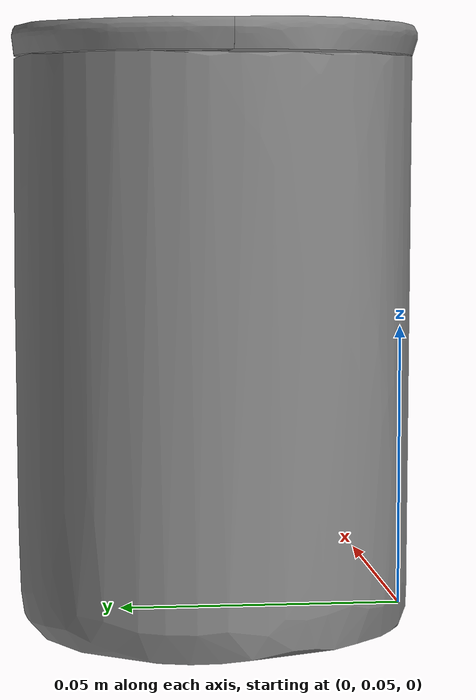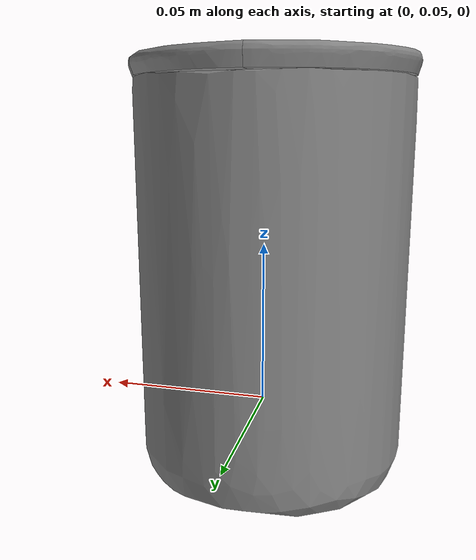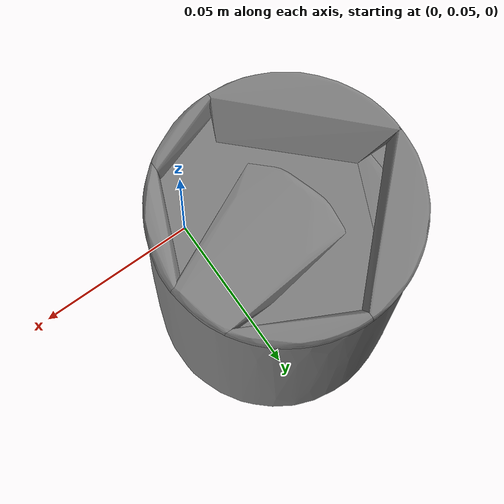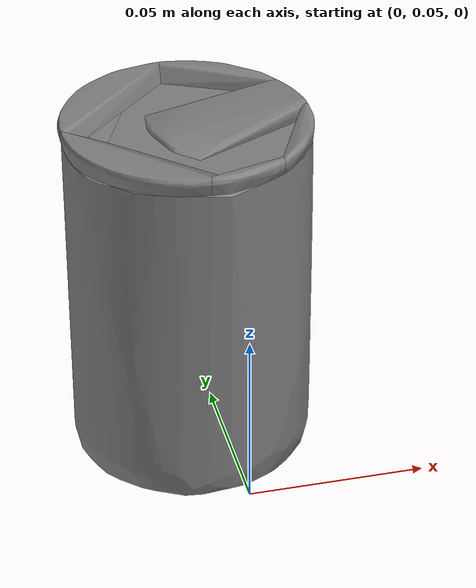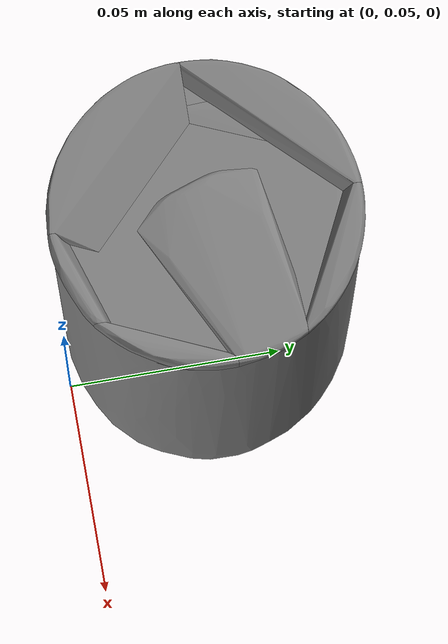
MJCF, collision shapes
<mujoco model="ycb_005_tomato_soup_can">
  <compiler meshdir="meshes" texturedir="meshes" angle="radian"/>
  <default>
    <default class="visual"><geom contype="0" conaffinity="0" group="2" density="0"/></default>
    <default class="collision"><geom group="3"/></default>
  </default>
  <asset>
    <texture name="ycb_005_tomato_soup_can_tex" type="2d" file="ycb_005_tomato_soup_can_texture.png"/>
    <material name="ycb_005_tomato_soup_can_mat" texture="ycb_005_tomato_soup_can_tex" specular="0.2" shininess="0.3"/>
    <mesh name="ycb_005_tomato_soup_can_visual" file="ycb_005_tomato_soup_can_visual.obj"/>
    <mesh name="ycb_005_tomato_soup_can_hull0" file="ycb_005_tomato_soup_can_hull0.obj"/>
    <mesh name="ycb_005_tomato_soup_can_hull1" file="ycb_005_tomato_soup_can_hull1.obj"/>
    <mesh name="ycb_005_tomato_soup_can_hull2" file="ycb_005_tomato_soup_can_hull2.obj"/>
    <mesh name="ycb_005_tomato_soup_can_hull3" file="ycb_005_tomato_soup_can_hull3.obj"/>
    <mesh name="ycb_005_tomato_soup_can_hull4" file="ycb_005_tomato_soup_can_hull4.obj"/>
    <mesh name="ycb_005_tomato_soup_can_hull5" file="ycb_005_tomato_soup_can_hull5.obj"/>
    <mesh name="ycb_005_tomato_soup_can_hull6" file="ycb_005_tomato_soup_can_hull6.obj"/>
    <mesh name="ycb_005_tomato_soup_can_hull7" file="ycb_005_tomato_soup_can_hull7.obj"/>
  </asset>
  <worldbody>
    <body name="object" pos="0 0 0">
      <freejoint name="object_free"/>
      <geom type="mesh" mesh="ycb_005_tomato_soup_can_visual" material="ycb_005_tomato_soup_can_mat" class="visual"/>
      <geom type="mesh" mesh="ycb_005_tomato_soup_can_hull0" class="collision"/>
      <geom type="mesh" mesh="ycb_005_tomato_soup_can_hull1" class="collision"/>
      <geom type="mesh" mesh="ycb_005_tomato_soup_can_hull2" class="collision"/>
      <geom type="mesh" mesh="ycb_005_tomato_soup_can_hull3" class="collision"/>
      <geom type="mesh" mesh="ycb_005_tomato_soup_can_hull4" class="collision"/>
      <geom type="mesh" mesh="ycb_005_tomato_soup_can_hull5" class="collision"/>
      <geom type="mesh" mesh="ycb_005_tomato_soup_can_hull6" class="collision"/>
      <geom type="mesh" mesh="ycb_005_tomato_soup_can_hull7" class="collision"/>
    </body>
  </worldbody>
</mujoco>
